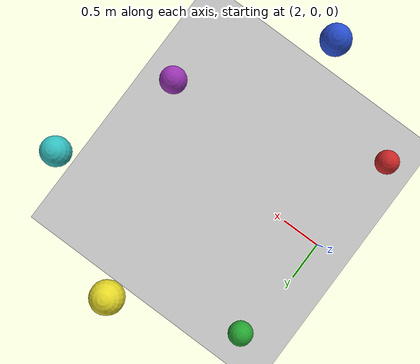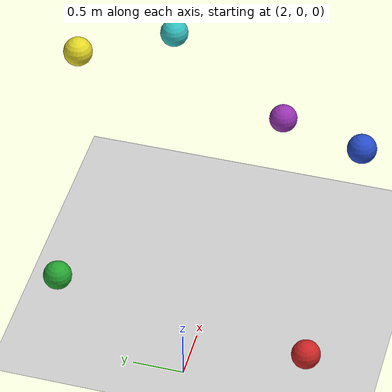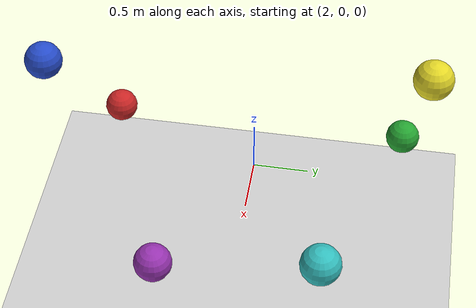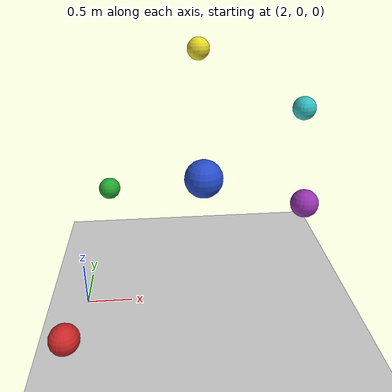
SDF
<?xml version="1.0"?>
<sdf version="1.6">
  <world name="camera_calibration_extrinsic">
    <include><uri>model://sun</uri></include>
    <include><uri>model://ground_plane</uri></include>
    <scene>
      <ambient>0.65 0.65 0.65 1</ambient>
      <background>0.15 0.18 0.22 1</background>
      <shadows>true</shadows>
    </scene>
    <physics name="default_physics" type="ode">
      <max_step_size>0.001</max_step_size>
      <real_time_update_rate>1000</real_time_update_rate>
    </physics>
    <include><uri>model://cal_marker_red</uri><name>cal_marker_01</name><pose>2.0 -1.2 0.6 0 0 0</pose></include>
    <include><uri>model://cal_marker_green</uri><name>cal_marker_02</name><pose>2.2 1.3 0.8 0 0 0</pose></include>
    <include><uri>model://cal_marker_blue</uri><name>cal_marker_03</name><pose>3.2 -1.4 2.2 0 0 0</pose></include>
    <include><uri>model://cal_marker_yellow</uri><name>cal_marker_04</name><pose>3.4 1.4 2.6 0 0 0</pose></include>
    <include><uri>model://cal_marker_purple</uri><name>cal_marker_05</name><pose>4.3 -0.4 1.4 0 0 0</pose></include>
    <include><uri>model://cal_marker_turquoise</uri><name>cal_marker_06</name><pose>4.6 0.8 2.0 0 0 0</pose></include>
  </world>
</sdf>

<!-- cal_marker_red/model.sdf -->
<sdf version="1.6">
  <model name="cal_marker_red">
    <static>true</static>
    <link name="marker">
      <visual name="visual">
        <geometry><sphere><radius>0.14</radius></sphere></geometry>
        <material><script><uri>file://media/materials/scripts/gazebo.material</uri><name>Gazebo/Red</name></script></material>
      </visual>
      <collision name="collision">
        <geometry><sphere><radius>0.14</radius></sphere></geometry>
      </collision>
    </link>
  </model>
</sdf>

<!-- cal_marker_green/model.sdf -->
<sdf version="1.6">
  <model name="cal_marker_green">
    <static>true</static>
    <link name="marker">
      <visual name="visual">
        <geometry><sphere><radius>0.14</radius></sphere></geometry>
        <material><script><uri>file://media/materials/scripts/gazebo.material</uri><name>Gazebo/Green</name></script></material>
      </visual>
      <collision name="collision">
        <geometry><sphere><radius>0.14</radius></sphere></geometry>
      </collision>
    </link>
  </model>
</sdf>

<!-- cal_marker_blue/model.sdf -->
<sdf version="1.6">
  <model name="cal_marker_blue">
    <static>true</static>
    <link name="marker">
      <visual name="visual">
        <geometry><sphere><radius>0.14</radius></sphere></geometry>
        <material><script><uri>file://media/materials/scripts/gazebo.material</uri><name>Gazebo/Blue</name></script></material>
      </visual>
      <collision name="collision">
        <geometry><sphere><radius>0.14</radius></sphere></geometry>
      </collision>
    </link>
  </model>
</sdf>

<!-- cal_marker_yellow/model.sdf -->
<sdf version="1.6">
  <model name="cal_marker_yellow">
    <static>true</static>
    <link name="marker">
      <visual name="visual">
        <geometry><sphere><radius>0.14</radius></sphere></geometry>
        <material><script><uri>file://media/materials/scripts/gazebo.material</uri><name>Gazebo/Yellow</name></script></material>
      </visual>
      <collision name="collision">
        <geometry><sphere><radius>0.14</radius></sphere></geometry>
      </collision>
    </link>
  </model>
</sdf>

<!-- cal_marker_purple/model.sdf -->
<sdf version="1.6">
  <model name="cal_marker_purple">
    <static>true</static>
    <link name="marker">
      <visual name="visual">
        <geometry><sphere><radius>0.14</radius></sphere></geometry>
        <material><script><uri>file://media/materials/scripts/gazebo.material</uri><name>Gazebo/Purple</name></script></material>
      </visual>
      <collision name="collision">
        <geometry><sphere><radius>0.14</radius></sphere></geometry>
      </collision>
    </link>
  </model>
</sdf>

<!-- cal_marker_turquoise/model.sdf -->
<sdf version="1.6">
  <model name="cal_marker_turquoise">
    <static>true</static>
    <link name="marker">
      <visual name="visual">
        <geometry><sphere><radius>0.14</radius></sphere></geometry>
        <material><script><uri>file://media/materials/scripts/gazebo.material</uri><name>Gazebo/Turquoise</name></script></material>
      </visual>
      <collision name="collision">
        <geometry><sphere><radius>0.14</radius></sphere></geometry>
      </collision>
    </link>
  </model>
</sdf>
